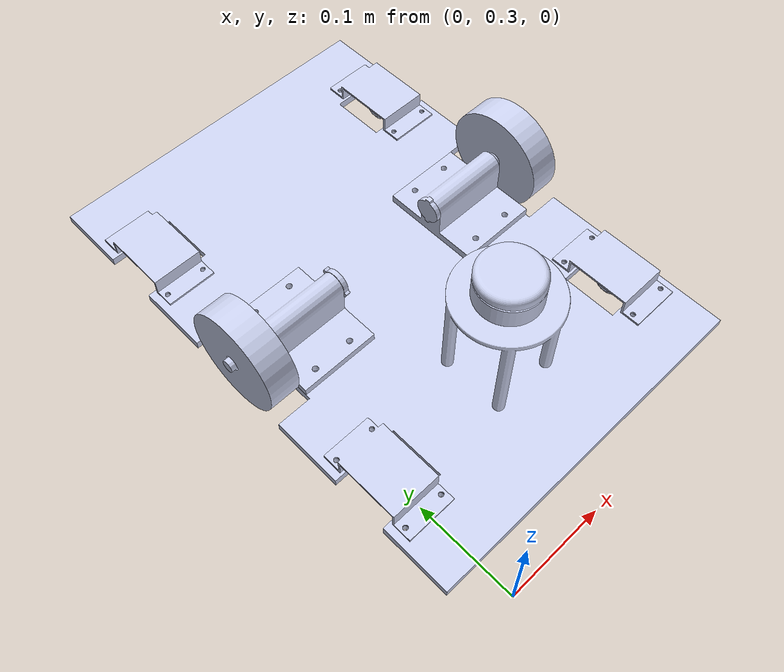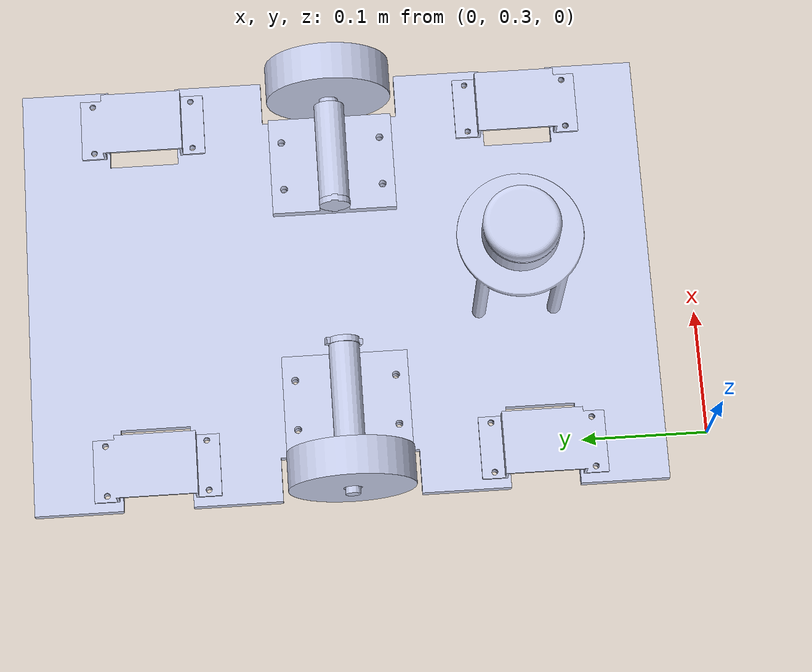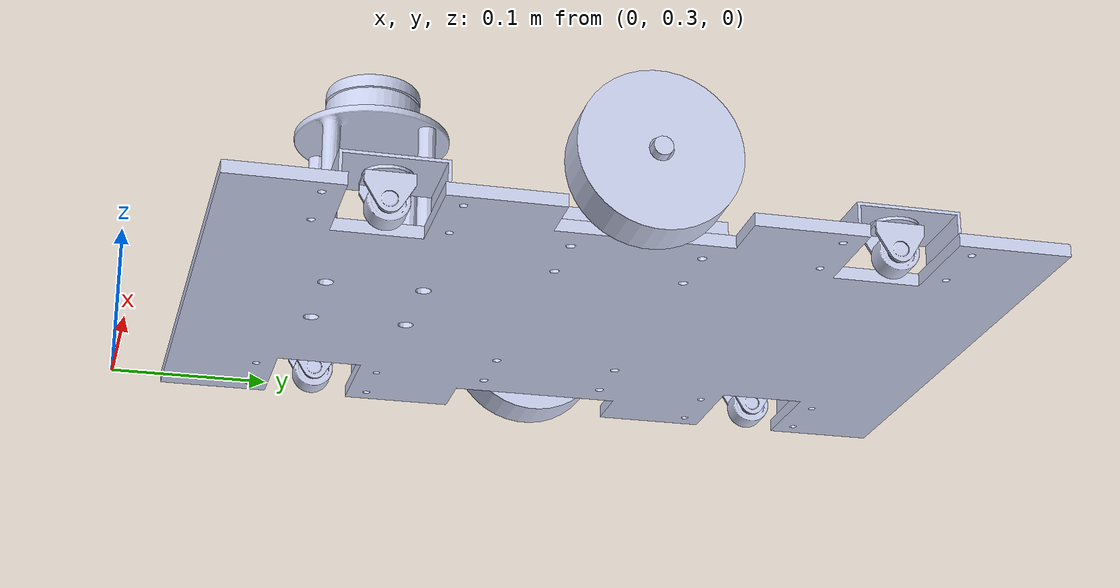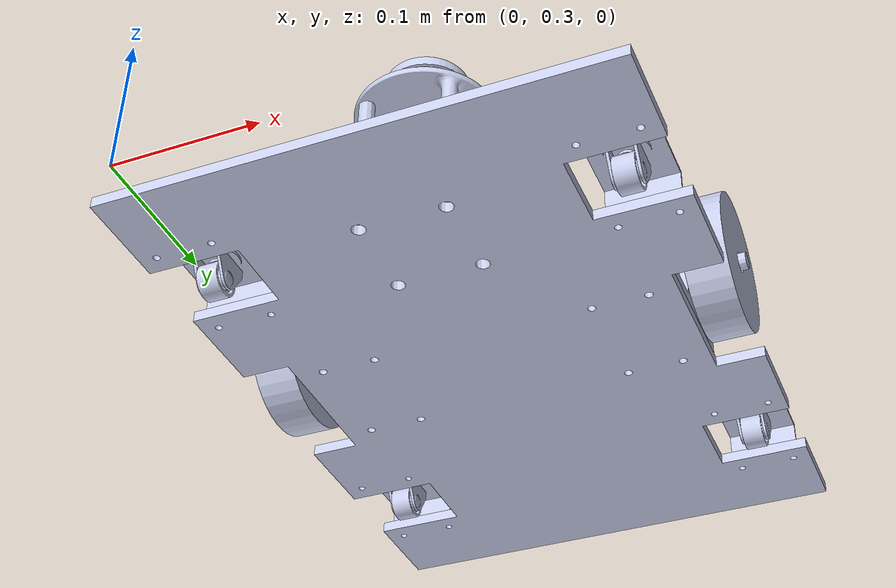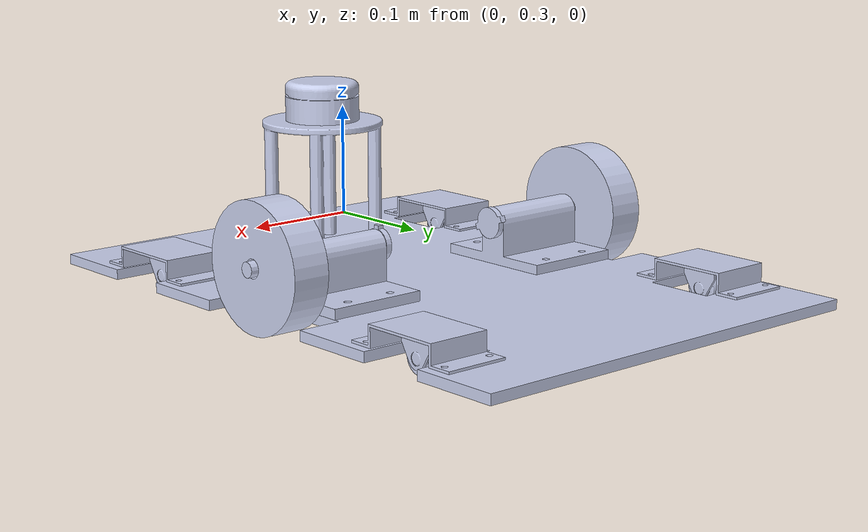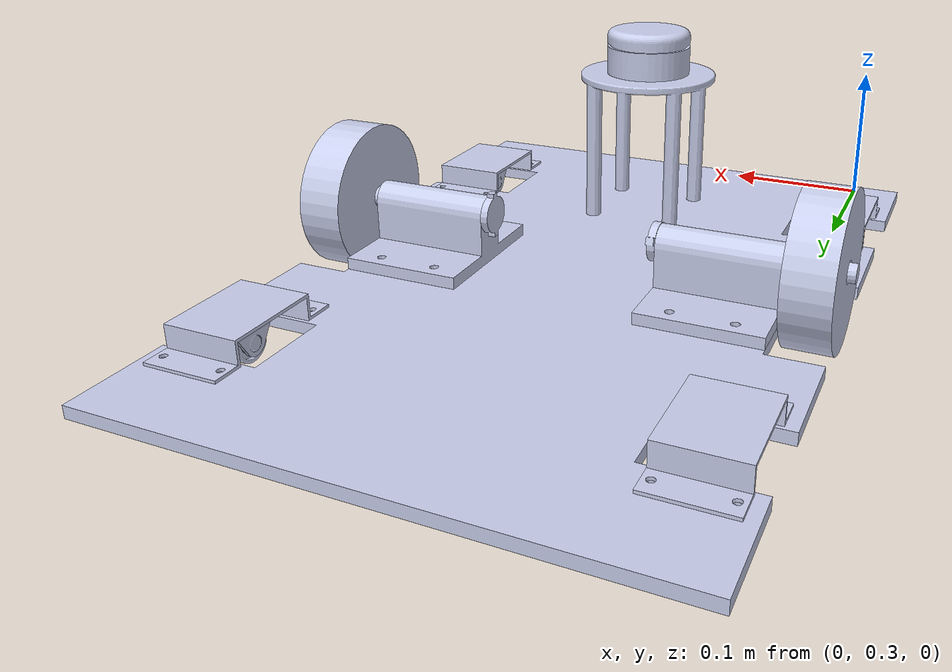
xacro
<?xml version="1.0" encoding="utf-8"?>
<robot name="buggy_descripation" xmlns:xacro="http://ros.org/wiki/xacro">

<xacro:include filename="$(find buggy_descripation)/urdf/buggy_descripation.urdf"/>
<xacro:include filename="$(find buggy_descripation)/gazebo/buggy_materials.gazebo"/>
<xacro:include filename="$(find buggy_descripation)/gazebo/buggy_physics.gazebo"/>
<xacro:include filename="$(find buggy_descripation)/gazebo/buggy_plugins.gazebo"/>

</robot>

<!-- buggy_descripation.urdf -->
<robot
  name="buggy_descripation">
  <link
    name="base_link">
    <inertial>
      <origin
        xyz="0.136936792322719 0.584702490472277 0.0119308441150687"
        rpy="0 0 0" />
      <mass
        value="1.21744389438579" />
      <inertia
        ixx="0.0263055228102427"
        ixy="-4.74960988562669E-18"
        ixz="1.78511750667704E-23"
        iyy="0.0103343218353292"
        iyz="1.59730077206781E-18"
        izz="0.0366268585773651" />
    </inertial>
    <visual>
      <origin
        xyz="0 0 0"
        rpy="0 0 0" />
      <geometry>
        <mesh
          filename="package://buggy_descripation/meshes/base_link.STL" />
      </geometry>
      <material
        name="">
        <color
          rgba="0.792156862745098 0.819607843137255 0.933333333333333 1" />
      </material>
    </visual>
    <collision>
      <origin
        xyz="0 0 0"
        rpy="0 0 0" />
      <geometry>
        <mesh
          filename="package://buggy_descripation/meshes/base_link.STL" />
      </geometry>
    </collision>
  </link>
  <link
    name="wheel_mount_1">
    <inertial>
      <origin
        xyz="-0.000311505899562636 0.00907541882425502 0.000108954617667245"
        rpy="0 0 0" />
      <mass
        value="0.116973628059289" />
      <inertia
        ixx="8.00274171721299E-05"
        ixy="2.58509437772729E-20"
        ixz="-2.88996226510714E-20"
        iyy="0.000117236984799871"
        iyz="1.34419452579816E-21"
        izz="7.22553292303753E-05" />
    </inertial>
    <visual>
      <origin
        xyz="0 0 0"
        rpy="0 0 0" />
      <geometry>
        <mesh
          filename="package://buggy_descripation/meshes/wheel_mount_1.STL" />
      </geometry>
      <material
        name="">
        <color
          rgba="0.792156862745098 0.819607843137255 0.933333333333333 1" />
      </material>
    </visual>
    <collision>
      <origin
        xyz="0 0 0"
        rpy="0 0 0" />
      <geometry>
        <mesh
          filename="package://buggy_descripation/meshes/wheel_mount_1.STL" />
      </geometry>
    </collision>
  </link>
  <joint
    name="wheel_mount_1_joint"
    type="fixed">
    <origin
      xyz="0.236827837705051 0.584724982332815 0.0199134687138035"
      rpy="1.5707963267949 0 1.5707963267949" />
    <parent
      link="base_link" />
    <child
      link="wheel_mount_1" />
    <axis
      xyz="0 0 0" />
  </joint>
  <link
    name="shaft_1">
    <inertial>
      <origin
        xyz="-0.000311505899562636 1.73754012652641E-05 0.00823181733965081"
        rpy="0 0 0" />
      <mass
        value="0.0215627079100336" />
      <inertia
        ixx="2.86205172556415E-05"
        ixy="1.08547260558386E-23"
        ixz="4.72874992251217E-21"
        iyy="2.85964483774262E-05"
        iyz="-2.33474197027878E-23"
        izz="7.10078417160629E-07" />
    </inertial>
    <visual>
      <origin
        xyz="0 0 0"
        rpy="0 0 0" />
      <geometry>
        <mesh
          filename="package://buggy_descripation/meshes/shaft_1.STL" />
      </geometry>
      <material
        name="">
        <color
          rgba="0.792156862745098 0.819607843137255 0.933333333333333 1" />
      </material>
    </visual>
    <collision>
      <origin
        xyz="0 0 0"
        rpy="0 0 0" />
      <geometry>
        <mesh
          filename="package://buggy_descripation/meshes/shaft_1.STL" />
      </geometry>
    </collision>
  </link>
  <joint
    name="shaft_1_joint"
    type="fixed">
    <origin
      xyz="0 0.03 0"
      rpy="0 0 0" />
    <parent
      link="wheel_mount_1" />
    <child
      link="shaft_1" />
    <axis
      xyz="0 0 0" />
  </joint>
  <link
    name="wheel_1">
    <inertial>
      <origin
        xyz="-0.000311505899562636 1.73754012652363E-05 0.0151089546176671"
        rpy="0 0 0" />
      <mass
        value="0.230318011416302" />
      <inertia
        ixx="0.000164461455026953"
        ixy="3.41960535803767E-36"
        ixz="-1.17172453763679E-20"
        iyy="0.000164461455026953"
        iyz="-8.75391666279245E-37"
        izz="0.00029437520834146" />
    </inertial>
    <visual>
      <origin
        xyz="0 0 0"
        rpy="0 0 0" />
      <geometry>
        <mesh
          filename="package://buggy_descripation/meshes/wheel_1.STL" />
      </geometry>
      <material
        name="">
        <color
          rgba="0.792156862745098 0.819607843137255 0.933333333333333 1" />
      </material>
    </visual>
    <collision>
      <origin
        xyz="0 0 0"
        rpy="0 0 0" />
      <geometry>
        <mesh
          filename="package://buggy_descripation/meshes/wheel_1.STL" />
      </geometry>
    </collision>
  </link>
  <joint
    name="wheel_1_joint"
    type="continuous">
    <origin
      xyz="0 0 0.045"
      rpy="0 0 0" />
    <parent
      link="shaft_1" />
    <child
      link="wheel_1" />
    <axis
      xyz="0 0 1" />
  </joint>
  <link
    name="caster_mount_1">
    <inertial>
      <origin
        xyz="5.55111512312578E-17 0.00290933863652861 -8.67361737988404E-18"
        rpy="0 0 0" />
      <mass
        value="0.0147090264035528" />
      <inertia
        ixx="3.33808829900102E-06"
        ixy="3.04618885109595E-21"
        ixz="1.05993884558895E-20"
        iyy="1.37782026637017E-05"
        iyz="-5.27075874710973E-22"
        izz="1.16585927397857E-05" />
    </inertial>
    <visual>
      <origin
        xyz="0 0 0"
        rpy="0 0 0" />
      <geometry>
        <mesh
          filename="package://buggy_descripation/meshes/caster_mount_1.STL" />
      </geometry>
      <material
        name="">
        <color
          rgba="0.792156862745098 0.819607843137255 0.933333333333333 1" />
      </material>
    </visual>
    <collision>
      <origin
        xyz="0 0 0"
        rpy="0 0 0" />
      <geometry>
        <mesh
          filename="package://buggy_descripation/meshes/caster_mount_1.STL" />
      </geometry>
    </collision>
  </link>
  <joint
    name="caster_mount_1_joint"
    type="fixed">
    <origin
      xyz="-0.00556320767728138 0.431913476433253 0.0234308441150687"
      rpy="1.5707963267949 0 1.5707963267949" />
    <parent
      link="base_link" />
    <child
      link="caster_mount_1" />
    <axis
      xyz="0 0 0" />
  </joint>
  <link
    name="caster_fixture_1">
    <inertial>
      <origin
        xyz="-7.12301839733698E-08 0.00616635217076654 1.73472347597681E-18"
        rpy="0 0 0" />
      <mass
        value="0.00415872768644128" />
      <inertia
        ixx="4.30437009807996E-07"
        ixy="-1.54297935970669E-12"
        ixz="9.49560746889793E-23"
        iyy="4.17582939592616E-07"
        iyz="6.75201979700994E-23"
        izz="4.05173035674847E-07" />
    </inertial>
    <visual>
      <origin
        xyz="0 0 0"
        rpy="0 0 0" />
      <geometry>
        <mesh
          filename="package://buggy_descripation/meshes/caster_fixture_1.STL" />
      </geometry>
      <material
        name="">
        <color
          rgba="0.792156862745098 0.819607843137255 0.933333333333333 1" />
      </material>
    </visual>
    <collision>
      <origin
        xyz="0 0 0"
        rpy="0 0 0" />
      <geometry>
        <mesh
          filename="package://buggy_descripation/meshes/caster_fixture_1.STL" />
      </geometry>
    </collision>
  </link>
  <joint
    name="caster_fixture_1_joint"
    type="fixed">
    <origin
      xyz="0 -0.011 0"
      rpy="0 0 0" />
    <parent
      link="caster_mount_1" />
    <child
      link="caster_fixture_1" />
    <axis
      xyz="0 0 0" />
  </joint>
  <link
    name="s_caster_1">
    <inertial>
      <origin
        xyz="0 -1.73472347597681E-18 -1.38777878078145E-17"
        rpy="0 0 0" />
      <mass
        value="0.00544413332382602" />
      <inertia
        ixx="3.38782826842286E-07"
        ixy="2.21364468932901E-39"
        ixz="2.35740419240729E-22"
        iyy="3.38782826842286E-07"
        iyz="-2.93862930614957E-39"
        izz="5.01644674433888E-07" />
    </inertial>
    <visual>
      <origin
        xyz="0 0 0"
        rpy="0 0 0" />
      <geometry>
        <mesh
          filename="package://buggy_descripation/meshes/s_caster_1.STL" />
      </geometry>
      <material
        name="">
        <color
          rgba="0.792156862745098 0.819607843137255 0.933333333333333 1" />
      </material>
    </visual>
    <collision>
      <origin
        xyz="0 0 0"
        rpy="0 0 0" />
      <geometry>
        <mesh
          filename="package://buggy_descripation/meshes/s_caster_1.STL" />
      </geometry>
    </collision>
  </link>
  <joint
    name="s_caster_1_joint"
    type="fixed">
    <origin
      xyz="0 0 0"
      rpy="0 0 0" />
    <parent
      link="caster_fixture_1" />
    <child
      link="s_caster_1" />
    <axis
      xyz="0 0 0" />
  </joint>
  <link
    name="caster_mount_2">
    <inertial>
      <origin
        xyz="5.55111512312578E-17 0.00290933863652861 0"
        rpy="0 0 0" />
      <mass
        value="0.0147090264035528" />
      <inertia
        ixx="3.33808829900103E-06"
        ixy="2.2874786250927E-21"
        ixz="-2.49963641355868E-20"
        iyy="1.37782026637017E-05"
        iyz="2.64510165118078E-22"
        izz="1.16585927397856E-05" />
    </inertial>
    <visual>
      <origin
        xyz="0 0 0"
        rpy="0 0 0" />
      <geometry>
        <mesh
          filename="package://buggy_descripation/meshes/caster_mount_2.STL" />
      </geometry>
      <material
        name="">
        <color
          rgba="0.792156862745098 0.819607843137255 0.933333333333333 1" />
      </material>
    </visual>
    <collision>
      <origin
        xyz="0 0 0"
        rpy="0 0 0" />
      <geometry>
        <mesh
          filename="package://buggy_descripation/meshes/caster_mount_2.STL" />
      </geometry>
    </collision>
  </link>
  <joint
    name="caster_mount_2_joint"
    type="fixed">
    <origin
      xyz="0.279436792322718 0.431913476433253 0.0234308441150687"
      rpy="1.5707963267949 0 1.5707963267949" />
    <parent
      link="base_link" />
    <child
      link="caster_mount_2" />
    <axis
      xyz="0 0 0" />
  </joint>
  <link
    name="caster_fixture_2">
    <inertial>
      <origin
        xyz="-7.12301839733698E-08 0.00616635217076654 0"
        rpy="0 0 0" />
      <mass
        value="0.00415872768644127" />
      <inertia
        ixx="4.30437009807995E-07"
        ixy="-1.54297936001376E-12"
        ixz="-1.75223490568748E-22"
        iyy="4.17582939592615E-07"
        iyz="-2.49743369533195E-22"
        izz="4.05173035674846E-07" />
    </inertial>
    <visual>
      <origin
        xyz="0 0 0"
        rpy="0 0 0" />
      <geometry>
        <mesh
          filename="package://buggy_descripation/meshes/caster_fixture_2.STL" />
      </geometry>
      <material
        name="">
        <color
          rgba="0.792156862745098 0.819607843137255 0.933333333333333 1" />
      </material>
    </visual>
    <collision>
      <origin
        xyz="0 0 0"
        rpy="0 0 0" />
      <geometry>
        <mesh
          filename="package://buggy_descripation/meshes/caster_fixture_2.STL" />
      </geometry>
    </collision>
  </link>
  <joint
    name="caster_fixture_2_joint"
    type="fixed">
    <origin
      xyz="0 -0.011 0"
      rpy="0 0 0" />
    <parent
      link="caster_mount_2" />
    <child
      link="caster_fixture_2" />
    <axis
      xyz="0 0 0" />
  </joint>
  <link
    name="s_wheel_2">
    <inertial>
      <origin
        xyz="0 -1.73472347597681E-18 5.55111512312578E-17"
        rpy="0 0 0" />
      <mass
        value="0.00544413332382603" />
      <inertia
        ixx="3.38782826842286E-07"
        ixy="1.21113138227373E-38"
        ixz="-6.75554850526471E-22"
        iyy="3.38782826842286E-07"
        iyz="-8.25084535794453E-39"
        izz="5.01644674433889E-07" />
    </inertial>
    <visual>
      <origin
        xyz="0 0 0"
        rpy="0 0 0" />
      <geometry>
        <mesh
          filename="package://buggy_descripation/meshes/s_wheel_2.STL" />
      </geometry>
      <material
        name="">
        <color
          rgba="0.792156862745098 0.819607843137255 0.933333333333333 1" />
      </material>
    </visual>
    <collision>
      <origin
        xyz="0 0 0"
        rpy="0 0 0" />
      <geometry>
        <mesh
          filename="package://buggy_descripation/meshes/s_wheel_2.STL" />
      </geometry>
    </collision>
  </link>
  <joint
    name="s_wheel_2_joint"
    type="fixed">
    <origin
      xyz="0 0 0"
      rpy="0 0 0" />
    <parent
      link="caster_fixture_2" />
    <child
      link="s_wheel_2" />
    <axis
      xyz="0 0 0" />
  </joint>
  <link
    name="caster_mount_3">
    <inertial>
      <origin
        xyz="-1.11022302462516E-16 -0.00290933863652861 -1.66533453693773E-16"
        rpy="0 0 0" />
      <mass
        value="0.0147090264035529" />
      <inertia
        ixx="3.33808829900103E-06"
        ixy="3.00372727566297E-21"
        ixz="-4.94692780397924E-21"
        iyy="1.37782026637017E-05"
        iyz="-7.12138623990839E-23"
        izz="1.16585927397857E-05" />
    </inertial>
    <visual>
      <origin
        xyz="0 0 0"
        rpy="0 0 0" />
      <geometry>
        <mesh
          filename="package://buggy_descripation/meshes/caster_mount_3.STL" />
      </geometry>
      <material
        name="">
        <color
          rgba="0.792156862745098 0.819607843137255 0.933333333333333 1" />
      </material>
    </visual>
    <collision>
      <origin
        xyz="0 0 0"
        rpy="0 0 0" />
      <geometry>
        <mesh
          filename="package://buggy_descripation/meshes/caster_mount_3.STL" />
      </geometry>
    </collision>
  </link>
  <joint
    name="caster_mount_3"
    type="fixed">
    <origin
      xyz="0.279436792322719 0.736913476433252 0.0234308441150687"
      rpy="-1.5707963267949 0 -1.5707963267949" />
    <parent
      link="base_link" />
    <child
      link="caster_mount_3" />
    <axis
      xyz="0 0 0" />
  </joint>
  <link
    name="caster_fixture_3">
    <inertial>
      <origin
        xyz="7.12301839733698E-08 -0.00516635217076653 -1.66533453693773E-16"
        rpy="0 0 0" />
      <mass
        value="0.00415872768644128" />
      <inertia
        ixx="4.30437009807997E-07"
        ixy="-1.54297935973795E-12"
        ixz="8.50656148732795E-23"
        iyy="4.17582939592616E-07"
        iyz="-1.94254123458878E-22"
        izz="4.05173035674847E-07" />
    </inertial>
    <visual>
      <origin
        xyz="0 0 0"
        rpy="0 0 0" />
      <geometry>
        <mesh
          filename="package://buggy_descripation/meshes/caster_fixture_3.STL" />
      </geometry>
      <material
        name="">
        <color
          rgba="0.792156862745098 0.819607843137255 0.933333333333333 1" />
      </material>
    </visual>
    <collision>
      <origin
        xyz="0 0 0"
        rpy="0 0 0" />
      <geometry>
        <mesh
          filename="package://buggy_descripation/meshes/caster_fixture_3.STL" />
      </geometry>
    </collision>
  </link>
  <joint
    name="caster_fixture_3_joint"
    type="fixed">
    <origin
      xyz="0 0.01 0"
      rpy="0 0 0" />
    <parent
      link="caster_mount_3" />
    <child
      link="caster_fixture_3" />
    <axis
      xyz="0 0 0" />
  </joint>
  <link
    name="s_wheel_3">
    <inertial>
      <origin
        xyz="-1.11022302462516E-16 3.46944695195361E-18 -2.22044604925031E-16"
        rpy="0 0 0" />
      <mass
        value="0.00544413332382601" />
      <inertia
        ixx="3.38782826842285E-07"
        ixy="2.21364468932902E-39"
        ixz="-8.27148061822121E-23"
        iyy="3.38782826842285E-07"
        iyz="2.93862930614957E-39"
        izz="5.01644674433887E-07" />
    </inertial>
    <visual>
      <origin
        xyz="0 0 0"
        rpy="0 0 0" />
      <geometry>
        <mesh
          filename="package://buggy_descripation/meshes/s_wheel_3.STL" />
      </geometry>
      <material
        name="">
        <color
          rgba="0.792156862745098 0.819607843137255 0.933333333333333 1" />
      </material>
    </visual>
    <collision>
      <origin
        xyz="0 0 0"
        rpy="0 0 0" />
      <geometry>
        <mesh
          filename="package://buggy_descripation/meshes/s_wheel_3.STL" />
      </geometry>
    </collision>
  </link>
  <joint
    name="s_wheel_3"
    type="fixed">
    <origin
      xyz="0 0.00100000000000001 0"
      rpy="0 0 0" />
    <parent
      link="caster_fixture_3" />
    <child
      link="s_wheel_3" />
    <axis
      xyz="0 0 0" />
  </joint>
  <link
    name="caster_mount_4">
    <inertial>
      <origin
        xyz="0 0.00290933863652861 -8.67361737988404E-19"
        rpy="0 0 0" />
      <mass
        value="0.0147090264035528" />
      <inertia
        ixx="3.33808829900102E-06"
        ixy="3.03678508214026E-21"
        ixz="1.74273978789006E-21"
        iyy="1.37782026637017E-05"
        iyz="2.22283605025357E-22"
        izz="1.16585927397857E-05" />
    </inertial>
    <visual>
      <origin
        xyz="0 0 0"
        rpy="0 0 0" />
      <geometry>
        <mesh
          filename="package://buggy_descripation/meshes/caster_mount_4.STL" />
      </geometry>
      <material
        name="">
        <color
          rgba="0.792156862745098 0.819607843137255 0.933333333333333 1" />
      </material>
    </visual>
    <collision>
      <origin
        xyz="0 0 0"
        rpy="0 0 0" />
      <geometry>
        <mesh
          filename="package://buggy_descripation/meshes/caster_mount_4.STL" />
      </geometry>
    </collision>
  </link>
  <joint
    name="caster_mount_4_joint"
    type="fixed">
    <origin
      xyz="-0.0055632076772813 0.736913476433252 0.0234308441150687"
      rpy="1.5707963267949 0 1.5707963267949" />
    <parent
      link="base_link" />
    <child
      link="caster_mount_4" />
    <axis
      xyz="0 0 0" />
  </joint>
  <link
    name="caster_fixture_4">
    <inertial>
      <origin
        xyz="-7.12301840843921E-08 0.00616635217076653 -8.67361737988404E-19"
        rpy="0 0 0" />
      <mass
        value="0.00415872768644128" />
      <inertia
        ixx="4.30437009807996E-07"
        ixy="-1.54297935980373E-12"
        ixz="-3.59722340639264E-23"
        iyy="4.17582939592616E-07"
        iyz="-3.37446893511555E-23"
        izz="4.05173035674847E-07" />
    </inertial>
    <visual>
      <origin
        xyz="0 0 0"
        rpy="0 0 0" />
      <geometry>
        <mesh
          filename="package://buggy_descripation/meshes/caster_fixture_4.STL" />
      </geometry>
      <material
        name="">
        <color
          rgba="0.792156862745098 0.819607843137255 0.933333333333333 1" />
      </material>
    </visual>
    <collision>
      <origin
        xyz="0 0 0"
        rpy="0 0 0" />
      <geometry>
        <mesh
          filename="package://buggy_descripation/meshes/caster_fixture_4.STL" />
      </geometry>
    </collision>
  </link>
  <joint
    name="caster_fixture_4_joint"
    type="fixed">
    <origin
      xyz="0 -0.011 0"
      rpy="0 0 0" />
    <parent
      link="caster_mount_4" />
    <child
      link="caster_fixture_4" />
    <axis
      xyz="0 0 0" />
  </joint>
  <link
    name="s_wheel_4">
    <inertial>
      <origin
        xyz="0 -5.20417042793042E-18 -1.47451495458029E-17"
        rpy="0 0 0" />
      <mass
        value="0.00544413332382601" />
      <inertia
        ixx="3.38782826842284E-07"
        ixy="2.21364468932901E-39"
        ixz="1.52289210013095E-23"
        iyy="3.38782826842285E-07"
        iyz="-2.93862930614957E-39"
        izz="5.01644674433887E-07" />
    </inertial>
    <visual>
      <origin
        xyz="0 0 0"
        rpy="0 0 0" />
      <geometry>
        <mesh
          filename="package://buggy_descripation/meshes/s_wheel_4.STL" />
      </geometry>
      <material
        name="">
        <color
          rgba="0.792156862745098 0.819607843137255 0.933333333333333 1" />
      </material>
    </visual>
    <collision>
      <origin
        xyz="0 0 0"
        rpy="0 0 0" />
      <geometry>
        <mesh
          filename="package://buggy_descripation/meshes/s_wheel_4.STL" />
      </geometry>
    </collision>
  </link>
  <joint
    name="s_wheel_4_joint"
    type="fixed">
    <origin
      xyz="0 0 0"
      rpy="0 0 0" />
    <parent
      link="caster_fixture_4" />
    <child
      link="s_wheel_4" />
    <axis
      xyz="0 0 0" />
  </joint>
  <link
    name="wheel_mount_2">
    <inertial>
      <origin
        xyz="0 0.0130580434229897 0"
        rpy="0 0 0" />
      <mass
        value="0.116973628059289" />
      <inertia
        ixx="8.00274171721299E-05"
        ixy="2.71810764533712E-20"
        ixz="-2.97009538694821E-20"
        iyy="0.000117236984799871"
        iyz="7.68830510492168E-21"
        izz="7.22553292303753E-05" />
    </inertial>
    <visual>
      <origin
        xyz="0 0 0"
        rpy="0 0 0" />
      <geometry>
        <mesh
          filename="package://buggy_descripation/meshes/wheel_mount_2.STL" />
      </geometry>
      <material
        name="">
        <color
          rgba="0.792156862745098 0.819607843137255 0.933333333333333 1" />
      </material>
    </visual>
    <collision>
      <origin
        xyz="0 0 0"
        rpy="0 0 0" />
      <geometry>
        <mesh
          filename="package://buggy_descripation/meshes/wheel_mount_2.STL" />
      </geometry>
    </collision>
  </link>
  <joint
    name="wheel_mount_2_joint"
    type="fixed">
    <origin
      xyz="0.0369367923227186 0.584413476433253 0.015594437807013"
      rpy="1.5707963267949 0 1.5707963267949" />
    <parent
      link="base_link" />
    <child
      link="wheel_mount_2" />
    <axis
      xyz="0 0 0" />
    <limit
      lower="0"
      upper="0"
      effort="0"
      velocity="0" />
  </joint>
  <link
    name="shaft_2">
    <inertial>
      <origin
        xyz="5.55111512312578E-17 -2.22044604925031E-16 0.00812286272198354"
        rpy="0 0 0" />
      <mass
        value="0.0215627079100336" />
      <inertia
        ixx="2.86205172556415E-05"
        ixy="0"
        ixz="-1.67452959487115E-22"
        iyy="2.85964483774262E-05"
        iyz="-3.49467886174526E-21"
        izz="7.1007841716063E-07" />
    </inertial>
    <visual>
      <origin
        xyz="0 0 0"
        rpy="0 0 0" />
      <geometry>
        <mesh
          filename="package://buggy_descripation/meshes/shaft_2.STL" />
      </geometry>
      <material
        name="">
        <color
          rgba="0.792156862745098 0.819607843137255 0.933333333333333 1" />
      </material>
    </visual>
    <collision>
      <origin
        xyz="0 0 0"
        rpy="0 0 0" />
      <geometry>
        <mesh
          filename="package://buggy_descripation/meshes/shaft_2.STL" />
      </geometry>
    </collision>
  </link>
  <joint
    name="shaft_2_joint"
    type="fixed">
    <origin
      xyz="0 0.034 0"
      rpy="3.14159265358979 0 1.92689132353229" />
    <parent
      link="wheel_mount_2" />
    <child
      link="shaft_2" />
    <axis
      xyz="0 0 0" />
  </joint>
  <link
    name="wheel_2">
    <inertial>
      <origin
        xyz="0 6.93889390390723E-18 -0.015"
        rpy="0 0 0" />
      <mass
        value="0.230318011416302" />
      <inertia
        ixx="0.000164461455026953"
        ixy="-1.13888008495933E-39"
        ixz="-1.51053771653851E-20"
        iyy="0.000164461455026953"
        iyz="3.10894231612504E-36"
        izz="0.000294375208341461" />
    </inertial>
    <visual>
      <origin
        xyz="0 0 0"
        rpy="0 0 0" />
      <geometry>
        <mesh
          filename="package://buggy_descripation/meshes/wheel_2.STL" />
      </geometry>
      <material
        name="">
        <color
          rgba="0.792156862745098 0.819607843137255 0.933333333333333 1" />
      </material>
    </visual>
    <collision>
      <origin
        xyz="0 0 0"
        rpy="0 0 0" />
      <geometry>
        <mesh
          filename="package://buggy_descripation/meshes/wheel_2.STL" />
      </geometry>
    </collision>
  </link>
  <joint
    name="wheel_2_joint"
    type="continuous">
    <origin
      xyz="0 0 0.045"
      rpy="3.14159265358979 0 1.92689132353229" />
    <parent
      link="shaft_2" />
    <child
      link="wheel_2" />
    <axis
      xyz="0 0 1" />
  </joint>
  <link
    name="lidar_mount">
    <inertial>
      <origin
        xyz="7.41984232188464E-05 0.0791888905804564 0.140074197922588"
        rpy="0 0 0" />
      <mass
        value="0.0679495676763308" />
      <inertia
        ixx="0.00012150234170699"
        ixy="-9.97496250477046E-08"
        ixz="-1.43847675741952E-07"
        iyy="0.000100174237721814"
        iyz="-9.9749287265195E-08"
        izz="0.000121502343492964" />
    </inertial>
    <visual>
      <origin
        xyz="0 0 0"
        rpy="0 0 0" />
      <geometry>
        <mesh
          filename="package://buggy_descripation/meshes/lidar_mount.STL" />
      </geometry>
      <material
        name="">
        <color
          rgba="0.792156862745098 0.819607843137255 0.933333333333333 1" />
      </material>
    </visual>
    <collision>
      <origin
        xyz="0 0 0"
        rpy="0 0 0" />
      <geometry>
        <mesh
          filename="package://buggy_descripation/meshes/lidar_mount.STL" />
      </geometry>
    </collision>
  </link>
  <joint
    name="lidar_mount_joint"
    type="fixed">
    <origin
      xyz="0.13694 0.58441 0.015931"
      rpy="1.5708 0 0" />
    <parent
      link="base_link" />
    <child
      link="lidar_mount" />
    <axis
      xyz="0 0 0" />
  </joint>
  <link
    name="lidar">
    <inertial>
      <origin
        xyz="-1.11022302462516E-16 0.0157959158923206 0.14"
        rpy="0 0 0" />
      <mass
        value="0.0887753797922069" />
      <inertia
        ixx="2.71258824735809E-05"
        ixy="-8.26964416216142E-38"
        ixz="-4.52420345301141E-39"
        iyy="3.92865646363297E-05"
        iyz="1.58873234403123E-21"
        izz="2.71258824735809E-05" />
    </inertial>
    <visual>
      <origin
        xyz="0 0 0"
        rpy="0 0 0" />
      <geometry>
        <mesh
          filename="package://buggy_descripation/meshes/lidar.STL" />
      </geometry>
      <material
        name="">
        <color
          rgba="0.792156862745098 0.819607843137255 0.933333333333333 1" />
      </material>
    </visual>
    <collision>
      <origin
        xyz="0 0 0"
        rpy="0 0 0" />
      <geometry>
        <mesh
          filename="package://buggy_descripation/meshes/lidar.STL" />
      </geometry>
    </collision>
  </link>
  <joint
    name="lidar_joint"
    type="fixed">
    <origin
      xyz="0 0.105 0"
      rpy="0 0 0" />
    <parent
      link="lidar_mount" />
    <child
      link="lidar" />
    <axis
      xyz="0 0 0" />
  </joint>
</robot>

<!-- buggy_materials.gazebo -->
<robot name="kinectbot" xmlns:xacro="http://www.ros.org/wiki/xacro" >

<xacro:property name="body_color" value="Gazebo/White" />
<xacro:property name="wheel_color" value="Gazebo/Black" />
<xacro:property name="kinect_color" value="Gazebo/RedBright" />
<xacro:property name="castor_color" value="Gazebo/Blue" />

<gazebo>
  <plugin filename="libgazebo_ros_control.so" name="control"/>
</gazebo>
<gazebo reference="base_link">
  <material>${body_color}</material>
</gazebo>

<gazebo reference="shaft_1">
  <material>${body_color}</material>
</gazebo>

<gazebo reference="shaft_2">
  <material>${body_color}</material>
</gazebo>

<gazebo reference="wheel_1">
  <material>${wheel_color}</material>
</gazebo>

<gazebo reference="wheel_2">
  <material>${wheel_color}</material>
</gazebo>

<gazebo reference="s_caster_1">
  <material>${castor_color}</material>
</gazebo>

<gazebo reference="s_caster_2">
  <material>${castor_color}</material>
</gazebo>

<gazebo reference="s_caster_3">
  <material>${castor_color}</material>
</gazebo>

<gazebo reference="s_caster_4">
  <material>${castor_color}</material>
</gazebo>

<gazebo reference="lidar">
  <material>${kinect_color}</material>
</gazebo>

</robot>
